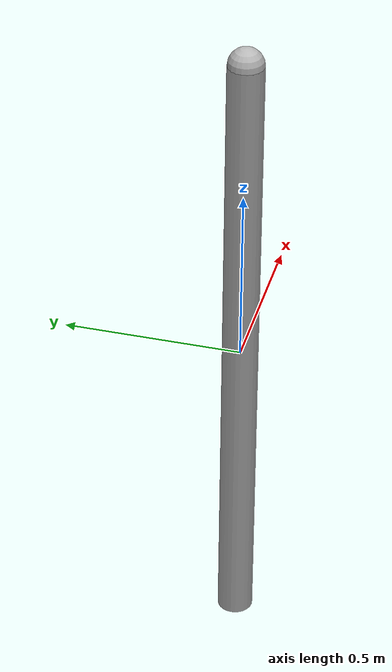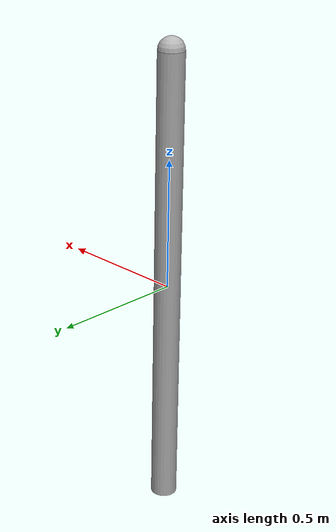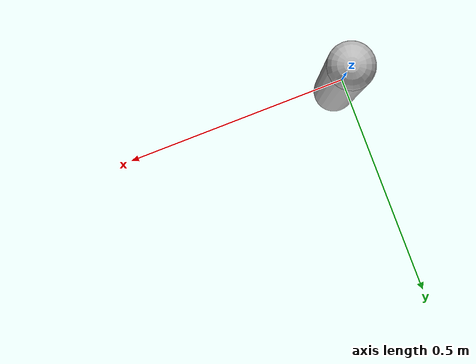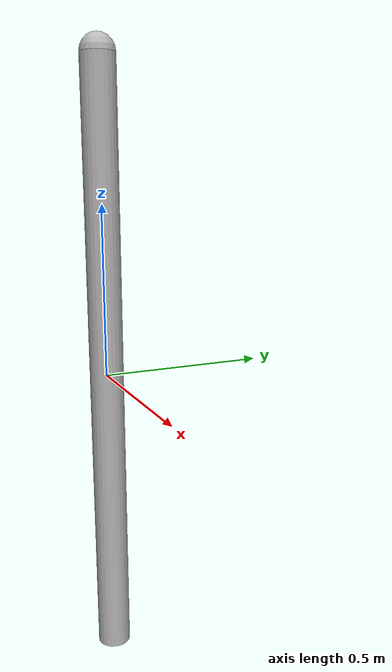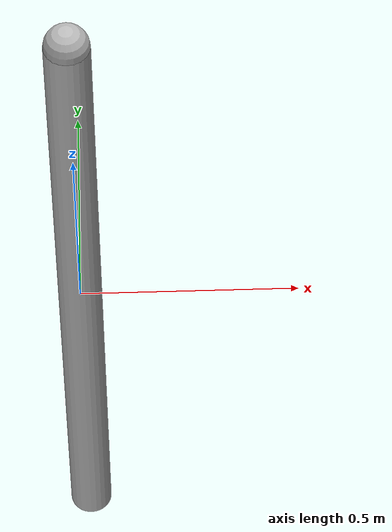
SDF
<?xml version='1.0'?>
<sdf version='1.6'>
		<model name="TwoLinksPlusFixedConnection">
			<self_collide>true</self_collide>
			<pose>0.0 0.0 0.0 0.0 0.0 0.0</pose>
			<!-- Start of parts of the pmodel TwoLinksPlusFixedConnection -->
			<!-- End of parts of the pmodel TwoLinksPlusFixedConnection -->

			<!-- Start of links of the pmodel TwoLinksPlusFixedConnection -->
			<!-- link full name is TwoLinksPlusFixedConnection::Tip -->
			<link name="1-Tip">
					<pose>0.0 0.0 0.8999999761581421 0.0 0.0 0.0</pose>
					<inertial>
						<pose>0.0 0.0 0.0 0.0 0.0 0.0</pose>
						<inertia>
							<ixx>0.0</ixx>
							<ixy>1.0</ixy>
							<ixz>2.299999952316284</ixz>
							<iyy>1.2000000476837158</iyy>
							<iyz>0.5</iyz>
							<izz>0.0</izz>
						</inertia>
						<mass>5.699999809265137</mass>
					</inertial>
					<!-- body full name is TwoLinksPlusFixedConnection::Tip::Tip -->
					<collision name="1--Tip">
						<laser_retro>0.0</laser_retro>
						<pose>0.0 0.0 0.0 0.0 0.0 0.0</pose>
						<geometry>
							<sphere>
								<radius>0.05000000074505806</radius>
							</sphere>
						</geometry>
						<surface>
							<bounce>
								<restitution_coefficient>0.0</restitution_coefficient>
								<threshold>100000.0</threshold>
							</bounce>
							<friction>
								<ode>
									<mu>0.0</mu>
									<mu2>0.0</mu2>
									<fdir1>010</fdir1>
									<slip1>1.0</slip1>
									<slip2>1.0</slip2>
								</ode>
								<torsional>
									<coefficient>1.0</coefficient>
									<surface_radius>0.0</surface_radius>
								</torsional>
							</friction>
						</surface>
					</collision>
					<visual name="1--Tip">
						<laser_retro>0.0</laser_retro>
						<pose>0.0 0.0 0.0 0.0 0.0 0.0</pose>
						<geometry>
							<sphere>
								<radius>0.05000000074505806</radius>
							</sphere>
						</geometry>
						<surface>
							<bounce>
								<restitution_coefficient>0.0</restitution_coefficient>
								<threshold>100000.0</threshold>
							</bounce>
							<friction>
								<ode>
									<mu>0.0</mu>
									<mu2>0.0</mu2>
									<fdir1>010</fdir1>
									<slip1>1.0</slip1>
									<slip2>1.0</slip2>
								</ode>
								<torsional>
									<coefficient>1.0</coefficient>
									<surface_radius>0.0</surface_radius>
								</torsional>
							</friction>
						</surface>
					</visual>
			</link>
			<!-- link full name is TwoLinksPlusFixedConnection::Rod -->
			<link name="2-Rod">
					<pose>0.0 0.0 0.0 0.0 0.0 0.0</pose>
					<inertial>
						<pose>0.0 0.0 0.0 0.0 0.0 0.0</pose>
						<inertia>
							<ixx>1.0</ixx>
							<ixy>0.0</ixy>
							<ixz>0.0</ixz>
							<iyy>1.0</iyy>
							<iyz>0.0</iyz>
							<izz>1.0</izz>
						</inertia>
						<mass>1.0</mass>
					</inertial>
					<!-- body full name is TwoLinksPlusFixedConnection::Rod::Rod -->
					<collision name="2--Rod">
						<laser_retro>0.0</laser_retro>
						<pose>0.0 0.0 0.0 0.0 0.0 0.0</pose>
						<geometry>
							<cylinder>
								<radius>0.05000000074505806</radius>
								<length>1.7999999523162842</length>
							</cylinder>
						</geometry>
						<surface>
							<bounce>
								<restitution_coefficient>0.0</restitution_coefficient>
								<threshold>100000.0</threshold>
							</bounce>
							<friction>
								<ode>
									<mu>1.0</mu>
									<mu2>1.0</mu2>
									<fdir1>0.0 0.0 0.0</fdir1>
									<slip1>0.0</slip1>
									<slip2>0.0</slip2>
								</ode>
								<torsional>
									<coefficient>1.0</coefficient>
									<surface_radius>0.0</surface_radius>
								</torsional>
							</friction>
						</surface>
					</collision>
					<visual name="2--Rod">
						<laser_retro>0.0</laser_retro>
						<pose>0.0 0.0 0.0 0.0 0.0 0.0</pose>
						<geometry>
							<cylinder>
								<radius>0.05000000074505806</radius>
								<length>1.7999999523162842</length>
							</cylinder>
						</geometry>
						<surface>
							<bounce>
								<restitution_coefficient>0.0</restitution_coefficient>
								<threshold>100000.0</threshold>
							</bounce>
							<friction>
								<ode>
									<mu>1.0</mu>
									<mu2>1.0</mu2>
									<fdir1>0.0 0.0 0.0</fdir1>
									<slip1>0.0</slip1>
									<slip2>0.0</slip2>
								</ode>
								<torsional>
									<coefficient>1.0</coefficient>
									<surface_radius>0.0</surface_radius>
								</torsional>
							</friction>
						</surface>
					</visual>
			</link>
			<!-- End of links of the pmodel TwoLinksPlusFixedConnection -->

			<!-- Start of joints of the pmodel TwoLinksPlusFixedConnection -->
			<!-- End of joints of the pmodel TwoLinksPlusFixedConnection -->

			<!-- Start of fixed connections of the pmodel TwoLinksPlusFixedConnection -->
			<!-- fixed joint full name is TwoLinksPlusFixedConnection::Rod::fixedJoint::TwoLinksPlusFixedConnection::Tip from TwoLinksPlusFixedConnection::Rod to TwoLinksPlusFixedConnection::Tip -->
			<joint name="3-fixedJoint" type="fixed">
				<parent>2-Rod</parent>
				<child>1-Tip</child>
				<axis><xyz>0 0 1</xyz></axis>
			</joint>
			<!-- End of fixed connections of the pmodel TwoLinksPlusFixedConnection -->
		</model>
</sdf>
